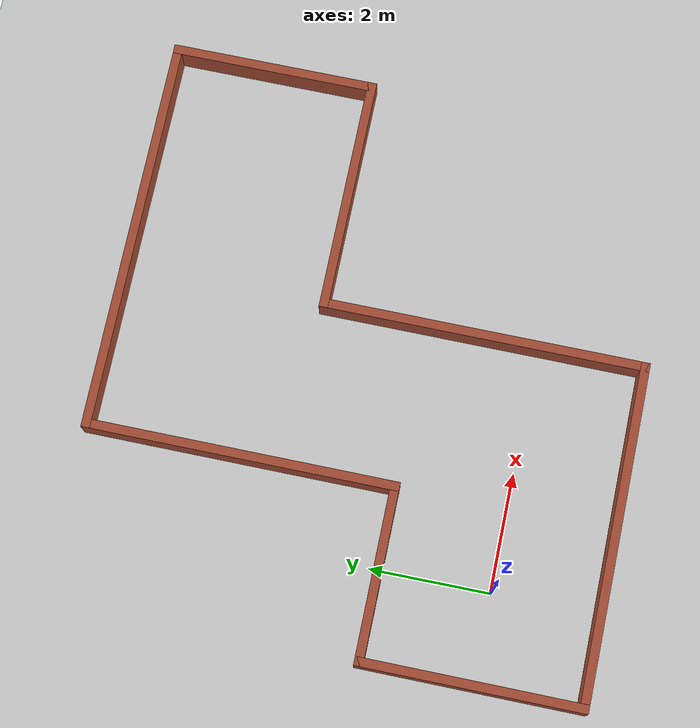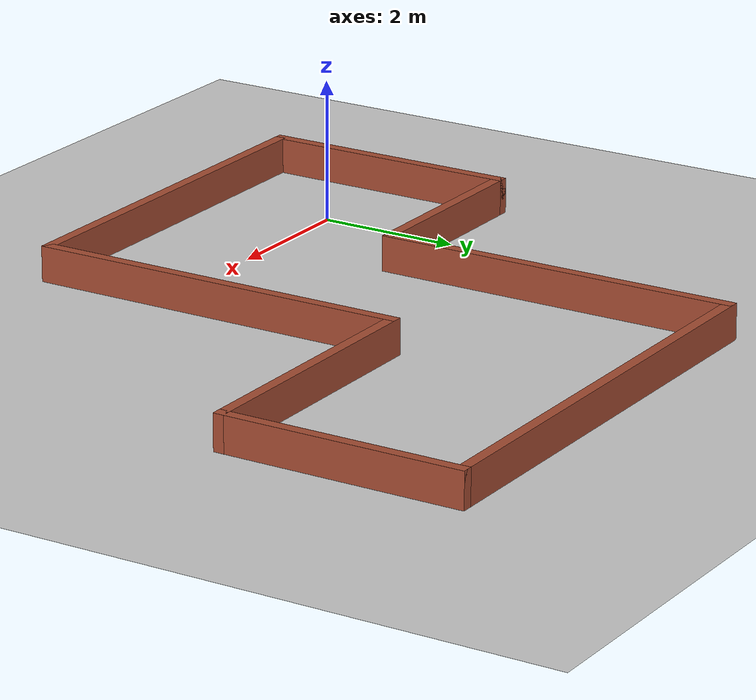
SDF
<sdf version="1.7">
 <world name="default">
  <light name="sun" type="directional">
   <pose>0 0 10 0 -0 0</pose>
   <diffuse>0.8 0.8 0.8 1</diffuse>
   <specular>0.2 0.2 0.2 1</specular>
   <attenuation>
    <range>1000</range>
    <constant>0.9</constant>
    <linear>0.01</linear>
    <quadratic>0.001</quadratic>
   </attenuation>
   <direction>-0.5 0.1 -0.9</direction>
   <spot><inner_angle>0</inner_angle><outer_angle>0</outer_angle><falloff>0</falloff></spot>
  </light>
  <model name="ground_plane">
   <static>1</static>
   <link name="link">
    <collision name="collision">
     <geometry><plane><normal>0 0 1</normal><size>100 100</size></plane></geometry>
     <surface>
      <contact><collide_bitmask>65535</collide_bitmask></contact>
      <friction><ode><mu>100</mu><mu2>50</mu2></ode></friction>
     </surface>
    </collision>
    <visual name="visual">
     <cast_shadows>0</cast_shadows>
     <geometry><plane><normal>0 0 1</normal><size>100 100</size></plane></geometry>
     <material>
      <script><uri>file://media/materials/scripts/gazebo.material</uri><name>Gazebo/Grey</name></script>
     </material>
    </visual>
   </link>
  </model>
  <gravity>0 0 -9.8</gravity>
  <magnetic_field>6e-06 2.3e-05 -4.2e-05</magnetic_field>
  <atmosphere type="adiabatic"/>
  <physics type="ode">
   <max_step_size>0.001</max_step_size>
   <real_time_factor>1</real_time_factor>
   <real_time_update_rate>1000</real_time_update_rate>
  </physics>
  <scene><ambient>0.4 0.4 0.4 1</ambient><background>0.7 0.7 0.7 1</background><shadows>1</shadows></scene>
  <spherical_coordinates>
   <surface_model>EARTH_WGS84</surface_model>
   <latitude_deg>0</latitude_deg>
   <longitude_deg>0</longitude_deg>
   <elevation>0</elevation>
   <heading_deg>0</heading_deg>
  </spherical_coordinates>
  <model name="slam_simple">
   <pose>3.20733 2.59271 0 0 -0 0</pose>
   <link name="Wall_10">
    <collision name="Wall_10_Collision">
     <geometry><box><size>3.5 0.15 0.5</size></box></geometry>
     <pose>0 0 0.25 0 -0 0</pose>
    </collision>
    <visual name="Wall_10_Visual">
     <pose>0 0 0.25 0 -0 0</pose>
     <geometry><box><size>3.5 0.15 0.5</size></box></geometry>
     <material>
      <script><uri>file://media/materials/scripts/gazebo.material</uri><name>Gazebo/Bricks</name></script>
      <ambient>1 1 1 1</ambient>
     </material>
     <meta><layer>0</layer></meta>
    </visual>
    <pose>4.725 2.675 0 0 -0 -1.5708</pose>
   </link>
   <link name="Wall_11">
    <collision name="Wall_11_Collision">
     <geometry><box><size>4 0.15 0.5</size></box></geometry>
     <pose>0 0 0.25 0 -0 0</pose>
    </collision>
    <visual name="Wall_11_Visual">
     <pose>0 0 0.25 0 -0 0</pose>
     <geometry><box><size>4 0.15 0.5</size></box></geometry>
     <material>
      <script><uri>file://media/materials/scripts/gazebo.material</uri><name>Gazebo/Bricks</name></script>
      <ambient>1 1 1 1</ambient>
     </material>
     <meta><layer>0</layer></meta>
    </visual>
    <pose>2.8 1 0 0 -0 3.14159</pose>
   </link>
   <link name="Wall_3">
    <collision name="Wall_3_Collision">
     <geometry><box><size>3.75 0.15 0.5</size></box></geometry>
     <pose>0 0 0.25 0 -0 0</pose>
    </collision>
    <visual name="Wall_3_Visual">
     <pose>0 0 0.25 0 -0 0</pose>
     <geometry><box><size>3.75 0.15 0.5</size></box></geometry>
     <material>
      <script><uri>file://media/materials/scripts/gazebo.material</uri><name>Gazebo/Bricks</name></script>
      <ambient>1 1 1 1</ambient>
     </material>
     <meta><layer>0</layer></meta>
    </visual>
    <pose>-4.725 -2.55 0 0 -0 -1.5708</pose>
   </link>
   <link name="Wall_4">
    <collision name="Wall_4_Collision">
     <geometry><box><size>5.75 0.15 0.5</size></box></geometry>
     <pose>0 0 0.25 0 -0 0</pose>
    </collision>
    <visual name="Wall_4_Visual">
     <pose>0 0 0.25 0 -0 0</pose>
     <geometry><box><size>5.75 0.15 0.5</size></box></geometry>
     <material>
      <script><uri>file://media/materials/scripts/gazebo.material</uri><name>Gazebo/Bricks</name></script>
      <ambient>1 1 1 1</ambient>
     </material>
     <meta><layer>0</layer></meta>
    </visual>
    <pose>-1.925 -4.35 0 0 -0 0</pose>
   </link>
   <link name="Wall_5">
    <collision name="Wall_5_Collision">
     <geometry><box><size>5.5 0.15 0.5</size></box></geometry>
     <pose>0 0 0.25 0 -0 0</pose>
    </collision>
    <visual name="Wall_5_Visual">
     <pose>0 0 0.25 0 -0 0</pose>
     <geometry><box><size>5.5 0.15 0.5</size></box></geometry>
     <material>
      <script><uri>file://media/materials/scripts/gazebo.material</uri><name>Gazebo/Bricks</name></script>
      <ambient>1 1 1 1</ambient>
     </material>
     <meta><layer>0</layer></meta>
    </visual>
    <pose>0.875 -1.675 0 0 -0 1.5708</pose>
   </link>
   <link name="Wall_7">
    <collision name="Wall_7_Collision">
     <geometry><box><size>3 0.15 0.5</size></box></geometry>
     <pose>0 0 0.25 0 -0 0</pose>
    </collision>
    <visual name="Wall_7_Visual">
     <pose>0 0 0.25 0 -0 0</pose>
     <geometry><box><size>3 0.15 0.5</size></box></geometry>
     <material>
      <script><uri>file://media/materials/scripts/gazebo.material</uri><name>Gazebo/Bricks</name></script>
      <ambient>1 1 1 1</ambient>
     </material>
     <meta><layer>0</layer></meta>
    </visual>
    <pose>-3.3 -0.75 0 0 -0 0</pose>
   </link>
   <link name="Wall_8">
    <collision name="Wall_8_Collision">
     <geometry><box><size>5.25 0.15 0.5</size></box></geometry>
     <pose>0 0 0.25 0 -0 0</pose>
    </collision>
    <visual name="Wall_8_Visual">
     <pose>0 0 0.25 0 -0 0</pose>
     <geometry><box><size>5.25 0.15 0.5</size></box></geometry>
     <material>
      <script><uri>file://media/materials/scripts/gazebo.material</uri><name>Gazebo/Bricks</name></script>
      <ambient>1 1 1 1</ambient>
     </material>
     <meta><layer>0</layer></meta>
    </visual>
    <pose>-1.875 1.8 0 0 -0 1.5708</pose>
   </link>
   <link name="Wall_9">
    <collision name="Wall_9_Collision">
     <geometry><box><size>6.75 0.15 0.5</size></box></geometry>
     <pose>0 0 0.25 0 -0 0</pose>
    </collision>
    <visual name="Wall_9_Visual">
     <pose>0 0 0.25 0 -0 0</pose>
     <geometry><box><size>6.75 0.15 0.5</size></box></geometry>
     <material>
      <script><uri>file://media/materials/scripts/gazebo.material</uri><name>Gazebo/Bricks</name></script>
      <ambient>1 1 1 1</ambient>
     </material>
     <meta><layer>0</layer></meta>
    </visual>
    <pose>1.425 4.35 0 0 -0 0</pose>
   </link>
   <static>1</static>
  </model>
 </world>
</sdf>
